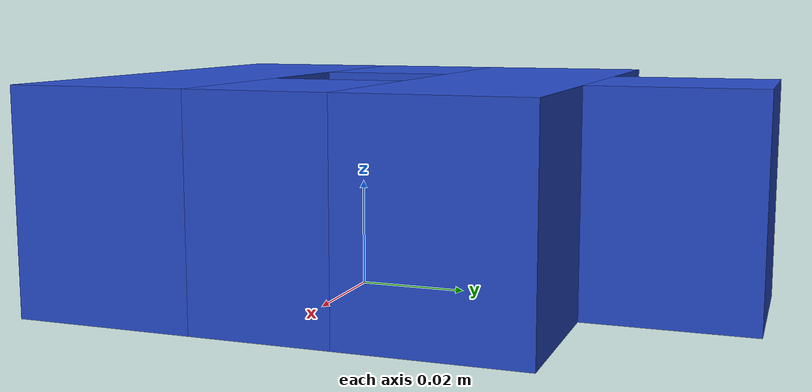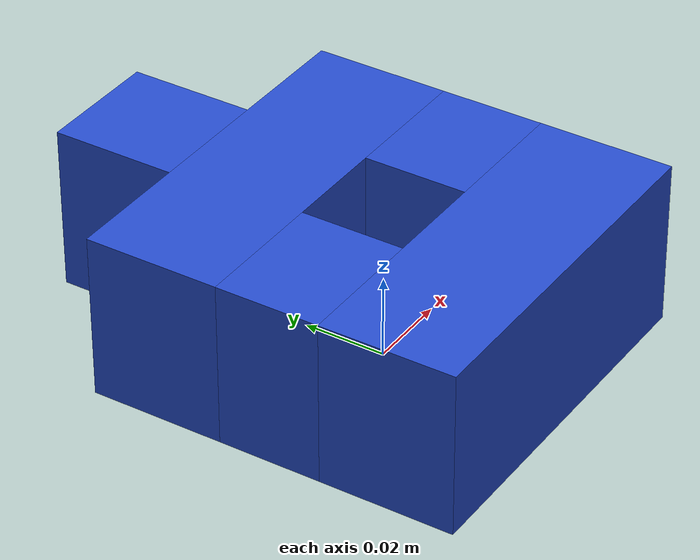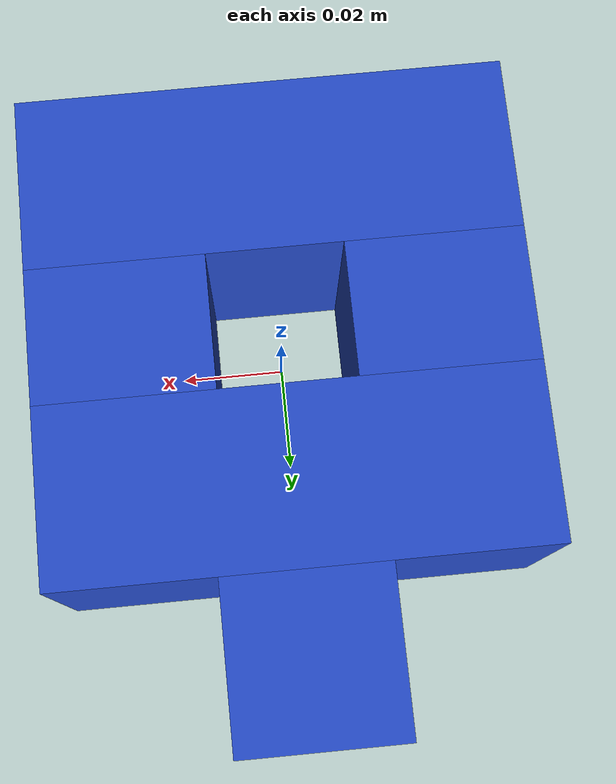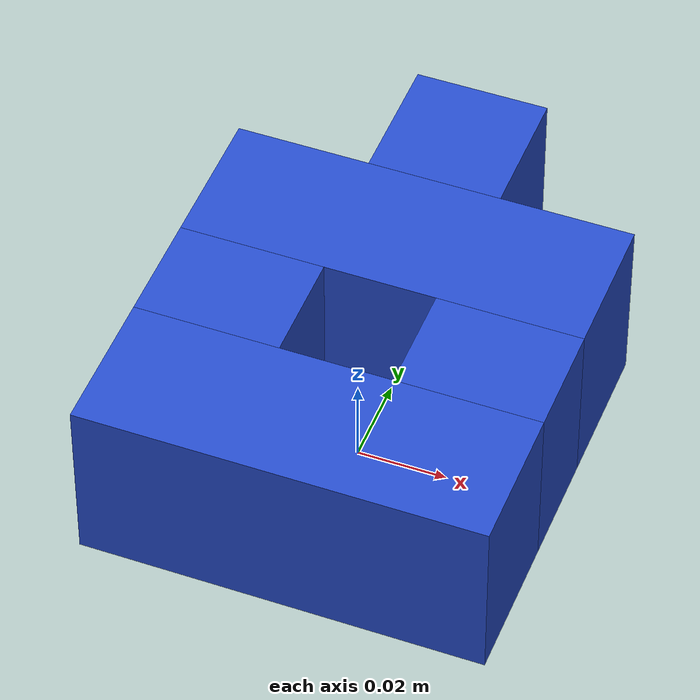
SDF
<?xml version="1.0" encoding="utf-8"?>
<!-- |    This document was autogenerated by xacro from model.xacro                    | -->
<!-- |    EDITING THIS FILE BY HAND IS NOT RECOMMENDED                                 | -->
<sdf version="1.5" xmlns:xacro="http://www.ros.org/wiki/xacro">
  <!-- properties width, model, and material must be defined before including this file -->
  <model name="ring_2">
    <link name="hanoi_ring_2">
      <velocity_decay>
        <linear>0.01</linear>
        <angular>1.0</angular>
      </velocity_decay>
      <visual name="part_T">
        <pose>0 0.02875 0.02 0 0 0</pose>
        <geometry>
          <box>
            <size>0.09 0.0325 0.04</size>
          </box>
        </geometry>
        <material>
          <script>
            <name>Gazebo/Blue</name>
          </script>
        </material>
      </visual>
      <collision name="part_T">
        <pose>0 0.02875 0.02 0 0 0</pose>
        <geometry>
          <box>
            <size>0.09 0.0325 0.04</size>
          </box>
        </geometry>
        <surface>
          <bounce>
            <restitution_coefficient>0.0</restitution_coefficient>
          </bounce>
          <friction>
            <ode>
              <mu>1</mu>
              <mu2>1</mu2>
            </ode>
          </friction>
          <contact>
            <ode>
              <max_vel>0.01</max_vel>
              <min_depth>0.001</min_depth>
            </ode>
          </contact>
        </surface>
      </collision>
      <visual name="part_B">
        <pose>0 -0.02875 0.02 0 0 0</pose>
        <geometry>
          <box>
            <size>0.09 0.0325 0.04</size>
          </box>
        </geometry>
        <material>
          <script>
            <name>Gazebo/Blue</name>
          </script>
        </material>
      </visual>
      <collision name="part_B">
        <pose>0 -0.02875 0.02 0 0 0</pose>
        <geometry>
          <box>
            <size>0.09 0.0325 0.04</size>
          </box>
        </geometry>
        <surface>
          <bounce>
            <restitution_coefficient>0.0</restitution_coefficient>
          </bounce>
          <friction>
            <ode>
              <mu>1</mu>
              <mu2>1</mu2>
            </ode>
          </friction>
          <contact>
            <ode>
              <max_vel>0.01</max_vel>
              <min_depth>0.001</min_depth>
            </ode>
          </contact>
        </surface>
      </collision>
      <visual name="part_L">
        <pose>-0.02875 0 0.02 0 0 0</pose>
        <geometry>
          <box>
            <size>0.0325 0.025 0.04</size>
          </box>
        </geometry>
        <material>
          <script>
            <name>Gazebo/Blue</name>
          </script>
        </material>
      </visual>
      <collision name="part_L">
        <pose>-0.02875 0 0.02 0 0 0</pose>
        <geometry>
          <box>
            <size>0.0325 0.025 0.04</size>
          </box>
        </geometry>
        <surface>
          <bounce>
            <restitution_coefficient>0.0</restitution_coefficient>
          </bounce>
          <friction>
            <ode>
              <mu>1</mu>
              <mu2>1</mu2>
            </ode>
          </friction>
          <contact>
            <ode>
              <max_vel>0.01</max_vel>
              <min_depth>0.001</min_depth>
            </ode>
          </contact>
        </surface>
      </collision>
      <visual name="part_R">
        <pose>0.02875 0 0.02 0 0 0</pose>
        <geometry>
          <box>
            <size>0.0325 0.025 0.04</size>
          </box>
        </geometry>
        <material>
          <script>
            <name>Gazebo/Blue</name>
          </script>
        </material>
      </visual>
      <collision name="part_R">
        <pose>0.02875 0 0.02 0 0 0</pose>
        <geometry>
          <box>
            <size>0.0325 0.025 0.04</size>
          </box>
        </geometry>
        <surface>
          <bounce>
            <restitution_coefficient>0.0</restitution_coefficient>
          </bounce>
          <friction>
            <ode>
              <mu>1</mu>
              <mu2>1</mu2>
            </ode>
          </friction>
          <contact>
            <ode>
              <max_vel>0.01</max_vel>
              <min_depth>0.001</min_depth>
            </ode>
          </contact>
        </surface>
      </collision>
      <visual name="part_H">
        <pose>0 0.06 0.02 0 0 0</pose>
        <geometry>
          <box>
            <size>0.03 0.03 0.04</size>
          </box>
        </geometry>
        <material>
          <script>
            <name>Gazebo/Blue</name>
          </script>
        </material>
      </visual>
      <collision name="part_H">
        <pose>0 0.06 0.02 0 0 0</pose>
        <geometry>
          <box>
            <size>0.03 0.03 0.04</size>
          </box>
        </geometry>
        <surface>
          <bounce>
            <restitution_coefficient>0.0</restitution_coefficient>
          </bounce>
          <friction>
            <ode>
              <mu>1</mu>
              <mu2>1</mu2>
            </ode>
          </friction>
          <contact>
            <ode>
              <max_vel>0.01</max_vel>
              <min_depth>0.001</min_depth>
            </ode>
          </contact>
        </surface>
      </collision>
      <!-- the handle part -->
      <inertial name="inertia">
        <pose>0 0 0.02 0 0 0</pose>
        <mass>0.02</mass>
        <inertia>
          <ixx>4.62916666667e-05</ixx>
          <iyy>4.62916666667e-05</iyy>
          <izz>8.725e-05</izz>
          <ixy>0</ixy>
          <ixz>0</ixz>
          <iyz>0</iyz>
        </inertia>
      </inertial>
    </link>
  </model>
</sdf>
